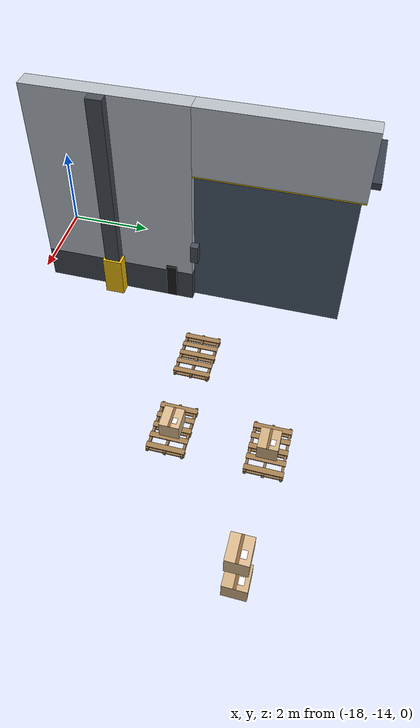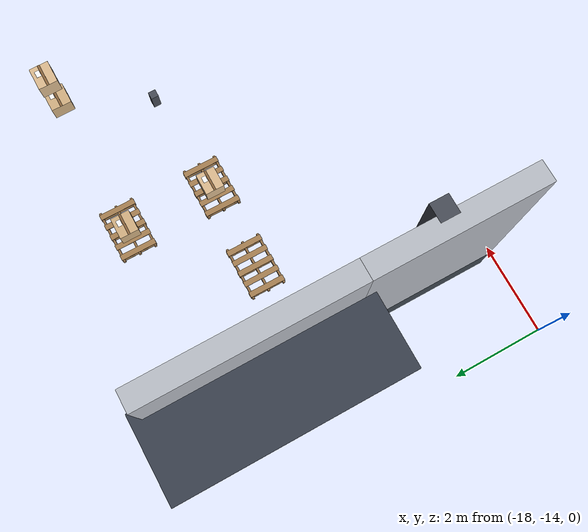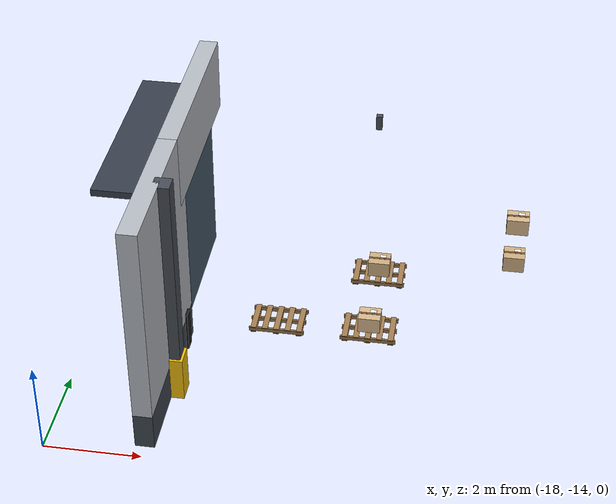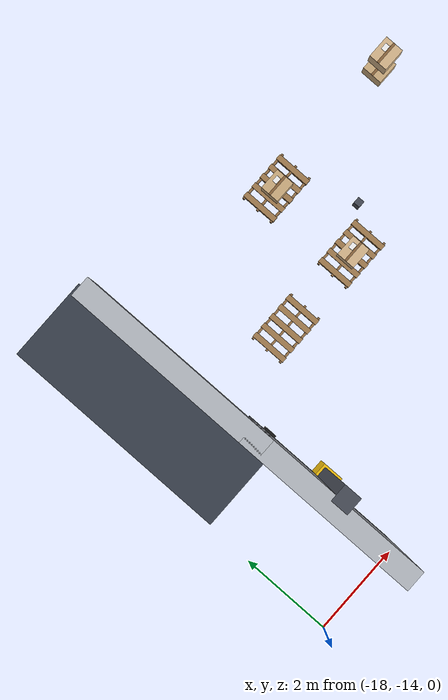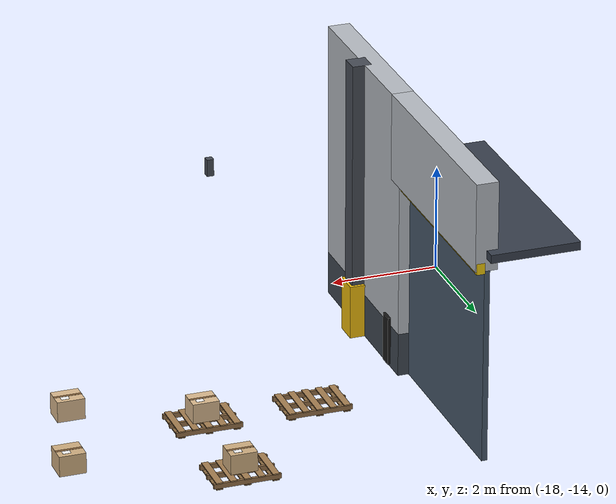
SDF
<sdf version="1.8">
 <world name="warehouse_3d">
  <model name="warehouse_architecture">
   <static>true</static>
   <link name="wall_west_s_base">
    <pose>-16.0000 -11.9000 0.4000 0.0000 0.0000 0.0000</pose>
    <collision name="wall_west_s_base_col">
     <geometry><box><size>0.4000 3.6000 0.8000</size></box></geometry>
    </collision>
    <visual name="wall_west_s_base_vis">
     <geometry><box><size>0.4000 3.6000 0.8000</size></box></geometry>
     <material>
      <ambient>0.163 0.182 0.208 1.00</ambient>
      <diffuse>0.250 0.280 0.320 1.00</diffuse>
      <specular>0.15 0.15 0.15 1.0</specular>
     </material>
    </visual>
   </link>
   <link name="wall_west_s_upper">
    <pose>-16.0000 -11.9000 3.0000 0.0000 0.0000 0.0000</pose>
    <collision name="wall_west_s_upper_col">
     <geometry><box><size>0.4000 3.6000 4.4000</size></box></geometry>
    </collision>
    <visual name="wall_west_s_upper_vis">
     <geometry><box><size>0.4000 3.6000 4.4000</size></box></geometry>
     <material>
      <ambient>0.468 0.481 0.501 1.00</ambient>
      <diffuse>0.720 0.740 0.770 1.00</diffuse>
      <specular>0.15 0.15 0.15 1.0</specular>
     </material>
    </visual>
   </link>
   <link name="dock_shutter_s_hdr">
    <pose>-16.0000 -8.5000 4.4000 0.0000 0.0000 0.0000</pose>
    <collision name="dock_shutter_s_hdr_col">
     <geometry><box><size>0.4000 4.0000 1.6000</size></box></geometry>
    </collision>
    <visual name="dock_shutter_s_hdr_vis">
     <geometry><box><size>0.4000 4.0000 1.6000</size></box></geometry>
     <material>
      <ambient>0.468 0.481 0.501 1.00</ambient>
      <diffuse>0.720 0.740 0.770 1.00</diffuse>
      <specular>0.15 0.15 0.15 1.0</specular>
     </material>
    </visual>
   </link>
   <link name="rollup_door_outbound">
    <pose>-16.0500 -8.5000 1.8000 0.0000 0.0000 0.0000</pose>
    <collision name="rollup_door_outbound_col">
     <geometry><box><size>0.1000 3.8000 3.6000</size></box></geometry>
    </collision>
    <visual name="rollup_door_outbound_vis">
     <geometry><box><size>0.1000 3.8000 3.6000</size></box></geometry>
     <material>
      <ambient>0.182 0.227 0.273 1.00</ambient>
      <diffuse>0.280 0.350 0.420 1.00</diffuse>
      <specular>0.15 0.15 0.15 1.0</specular>
     </material>
    </visual>
   </link>
   <link name="rollup_hazard_hdr_out">
    <pose>-15.9000 -8.5000 3.6500 0.0000 0.0000 0.0000</pose>
    <collision name="rollup_hazard_hdr_out_col">
     <geometry><box><size>0.1500 4.0000 0.2000</size></box></geometry>
    </collision>
    <visual name="rollup_hazard_hdr_out_vis">
     <geometry><box><size>0.1500 4.0000 0.2000</size></box></geometry>
     <material>
      <ambient>0.617 0.520 0.033 1.00</ambient>
      <diffuse>0.950 0.800 0.050 1.00</diffuse>
      <specular>0.15 0.15 0.15 1.0</specular>
     </material>
    </visual>
   </link>
   <link name="dock_canopy_out">
    <pose>-16.8000 -8.5000 3.9000 0.0000 0.0000 0.0000</pose>
    <collision name="dock_canopy_out_col">
     <geometry><box><size>1.6000 4.4000 0.1500</size></box></geometry>
    </collision>
    <visual name="dock_canopy_out_vis">
     <geometry><box><size>1.6000 4.4000 0.1500</size></box></geometry>
     <material>
      <ambient>0.143 0.163 0.195 1.00</ambient>
      <diffuse>0.220 0.250 0.300 1.00</diffuse>
      <specular>0.15 0.15 0.15 1.0</specular>
     </material>
    </visual>
   </link>
   <link name="dock_bumper_out_1">
    <pose>-15.8500 -10.6000 0.5000 0.0000 0.0000 0.0000</pose>
    <collision name="dock_bumper_out_1_col">
     <geometry><box><size>0.2000 0.2500 0.9000</size></box></geometry>
    </collision>
    <visual name="dock_bumper_out_1_vis">
     <geometry><box><size>0.2000 0.2500 0.9000</size></box></geometry>
     <material>
      <ambient>0.065 0.065 0.065 1.00</ambient>
      <diffuse>0.100 0.100 0.100 1.00</diffuse>
      <specular>0.15 0.15 0.15 1.0</specular>
     </material>
    </visual>
   </link>
   <link name="col_0_base">
    <pose>-15.7500 -12.0000 0.5000 0.0000 0.0000 0.0000</pose>
    <collision name="col_0_base_col"><geometry><box><size>0.4500 0.4500 1.0000</size></box></geometry></collision>
    <visual name="col_0_base_vis">
     <geometry><box><size>0.4500 0.4500 1.0000</size></box></geometry>
     <material>
      <ambient>0.617 0.488 0.033 1.00</ambient>
      <diffuse>0.950 0.750 0.050 1.00</diffuse>
      <specular>0.15 0.15 0.15 1.0</specular>
     </material>
    </visual>
   </link>
   <link name="col_0_stem">
    <pose>-15.7500 -12.0000 3.1000 0.0000 0.0000 0.0000</pose>
    <collision name="col_0_stem_col"><geometry><box><size>0.3500 0.3500 4.2000</size></box></geometry></collision>
    <visual name="col_0_stem_vis">
     <geometry><box><size>0.3500 0.3500 4.2000</size></box></geometry>
     <material>
      <ambient>0.182 0.195 0.221 1.00</ambient>
      <diffuse>0.280 0.300 0.340 1.00</diffuse>
      <specular>0.15 0.15 0.15 1.0</specular>
     </material>
    </visual>
   </link>
   <link name="truss_web_0_0">
    <pose>-12.0000 -9.0000 5.0500 0.0000 0.0000 0.0000</pose>
    <visual name="truss_web_0_0_vis">
     <geometry><box><size>0.1200 0.1200 0.3000</size></box></geometry>
     <material>
      <ambient>0.182 0.195 0.221 1.00</ambient>
      <diffuse>0.280 0.300 0.340 1.00</diffuse>
      <specular>0.15 0.15 0.15 1.0</specular>
     </material>
    </visual>
   </link>
  </model>
  <model name="pallet_pack_1">
   <static>true</static>
   <pose>-12.00 -9.50 0.00 0 0 0</pose>
   <link name="stringer_0">
    <pose>0.0000 -0.3600 0.0650 0.0000 0.0000 0.0000</pose>
    <collision name="stringer_0_col"><geometry><box><size>1.2000 0.0500 0.0900</size></box></geometry></collision>
    <visual name="stringer_0_vis">
     <geometry><box><size>1.2000 0.0500 0.0900</size></box></geometry>
     <material>
      <ambient>0.377 0.286 0.182 1.00</ambient>
      <diffuse>0.580 0.440 0.280 1.00</diffuse>
      <specular>0.15 0.15 0.15 1.0</specular>
     </material>
    </visual>
   </link>
   <link name="stringer_1">
    <pose>0.0000 0.0000 0.0650 0.0000 0.0000 0.0000</pose>
    <collision name="stringer_1_col"><geometry><box><size>1.2000 0.0500 0.0900</size></box></geometry></collision>
    <visual name="stringer_1_vis">
     <geometry><box><size>1.2000 0.0500 0.0900</size></box></geometry>
     <material>
      <ambient>0.377 0.286 0.182 1.00</ambient>
      <diffuse>0.580 0.440 0.280 1.00</diffuse>
      <specular>0.15 0.15 0.15 1.0</specular>
     </material>
    </visual>
   </link>
   <link name="stringer_2">
    <pose>0.0000 0.3600 0.0650 0.0000 0.0000 0.0000</pose>
    <collision name="stringer_2_col"><geometry><box><size>1.2000 0.0500 0.0900</size></box></geometry></collision>
    <visual name="stringer_2_vis">
     <geometry><box><size>1.2000 0.0500 0.0900</size></box></geometry>
     <material>
      <ambient>0.377 0.286 0.182 1.00</ambient>
      <diffuse>0.580 0.440 0.280 1.00</diffuse>
      <specular>0.15 0.15 0.15 1.0</specular>
     </material>
    </visual>
   </link>
   <link name="top_slat_0">
    <pose>-0.5000 0.0000 0.1200 0.0000 0.0000 0.0000</pose>
    <collision name="top_slat_0_col"><geometry><box><size>0.1200 0.8000 0.0220</size></box></geometry></collision>
    <visual name="top_slat_0_vis">
     <geometry><box><size>0.1200 0.8000 0.0220</size></box></geometry>
     <material>
      <ambient>0.423 0.325 0.208 1.00</ambient>
      <diffuse>0.650 0.500 0.320 1.00</diffuse>
      <specular>0.15 0.15 0.15 1.0</specular>
     </material>
    </visual>
   </link>
   <link name="top_slat_1">
    <pose>-0.2500 0.0000 0.1200 0.0000 0.0000 0.0000</pose>
    <collision name="top_slat_1_col"><geometry><box><size>0.1200 0.8000 0.0220</size></box></geometry></collision>
    <visual name="top_slat_1_vis">
     <geometry><box><size>0.1200 0.8000 0.0220</size></box></geometry>
     <material>
      <ambient>0.423 0.325 0.208 1.00</ambient>
      <diffuse>0.650 0.500 0.320 1.00</diffuse>
      <specular>0.15 0.15 0.15 1.0</specular>
     </material>
    </visual>
   </link>
   <link name="top_slat_2">
    <pose>0.0000 0.0000 0.1200 0.0000 0.0000 0.0000</pose>
    <collision name="top_slat_2_col"><geometry><box><size>0.1200 0.8000 0.0220</size></box></geometry></collision>
    <visual name="top_slat_2_vis">
     <geometry><box><size>0.1200 0.8000 0.0220</size></box></geometry>
     <material>
      <ambient>0.423 0.325 0.208 1.00</ambient>
      <diffuse>0.650 0.500 0.320 1.00</diffuse>
      <specular>0.15 0.15 0.15 1.0</specular>
     </material>
    </visual>
   </link>
   <link name="top_slat_3">
    <pose>0.2500 0.0000 0.1200 0.0000 0.0000 0.0000</pose>
    <collision name="top_slat_3_col"><geometry><box><size>0.1200 0.8000 0.0220</size></box></geometry></collision>
    <visual name="top_slat_3_vis">
     <geometry><box><size>0.1200 0.8000 0.0220</size></box></geometry>
     <material>
      <ambient>0.423 0.325 0.208 1.00</ambient>
      <diffuse>0.650 0.500 0.320 1.00</diffuse>
      <specular>0.15 0.15 0.15 1.0</specular>
     </material>
    </visual>
   </link>
   <link name="top_slat_4">
    <pose>0.5000 0.0000 0.1200 0.0000 0.0000 0.0000</pose>
    <collision name="top_slat_4_col"><geometry><box><size>0.1200 0.8000 0.0220</size></box></geometry></collision>
    <visual name="top_slat_4_vis">
     <geometry><box><size>0.1200 0.8000 0.0220</size></box></geometry>
     <material>
      <ambient>0.423 0.325 0.208 1.00</ambient>
      <diffuse>0.650 0.500 0.320 1.00</diffuse>
      <specular>0.15 0.15 0.15 1.0</specular>
     </material>
    </visual>
   </link>
   <link name="bot_slat_0">
    <pose>-0.5000 0.0000 0.0100 0.0000 0.0000 0.0000</pose>
    <collision name="bot_slat_0_col"><geometry><box><size>0.1200 0.8000 0.0200</size></box></geometry></collision>
    <visual name="bot_slat_0_vis">
     <geometry><box><size>0.1200 0.8000 0.0200</size></box></geometry>
     <material>
      <ambient>0.358 0.273 0.169 1.00</ambient>
      <diffuse>0.550 0.420 0.260 1.00</diffuse>
      <specular>0.15 0.15 0.15 1.0</specular>
     </material>
    </visual>
   </link>
   <link name="bot_slat_1">
    <pose>0.0000 0.0000 0.0100 0.0000 0.0000 0.0000</pose>
    <collision name="bot_slat_1_col"><geometry><box><size>0.1200 0.8000 0.0200</size></box></geometry></collision>
    <visual name="bot_slat_1_vis">
     <geometry><box><size>0.1200 0.8000 0.0200</size></box></geometry>
     <material>
      <ambient>0.358 0.273 0.169 1.00</ambient>
      <diffuse>0.550 0.420 0.260 1.00</diffuse>
      <specular>0.15 0.15 0.15 1.0</specular>
     </material>
    </visual>
   </link>
   <link name="bot_slat_2">
    <pose>0.5000 0.0000 0.0100 0.0000 0.0000 0.0000</pose>
    <collision name="bot_slat_2_col"><geometry><box><size>0.1200 0.8000 0.0200</size></box></geometry></collision>
    <visual name="bot_slat_2_vis">
     <geometry><box><size>0.1200 0.8000 0.0200</size></box></geometry>
     <material>
      <ambient>0.358 0.273 0.169 1.00</ambient>
      <diffuse>0.550 0.420 0.260 1.00</diffuse>
      <specular>0.15 0.15 0.15 1.0</specular>
     </material>
    </visual>
   </link>
  </model>
  <model name="pallet_pack_2">
   <static>true</static>
   <pose>-12.00 -7.50 0.00 0 0 0</pose>
   <link name="stringer_0">
    <pose>0.0000 -0.3600 0.0650 0.0000 0.0000 0.0000</pose>
    <collision name="stringer_0_col"><geometry><box><size>1.2000 0.0500 0.0900</size></box></geometry></collision>
    <visual name="stringer_0_vis">
     <geometry><box><size>1.2000 0.0500 0.0900</size></box></geometry>
     <material>
      <ambient>0.377 0.286 0.182 1.00</ambient>
      <diffuse>0.580 0.440 0.280 1.00</diffuse>
      <specular>0.15 0.15 0.15 1.0</specular>
     </material>
    </visual>
   </link>
   <link name="stringer_1">
    <pose>0.0000 0.0000 0.0650 0.0000 0.0000 0.0000</pose>
    <collision name="stringer_1_col"><geometry><box><size>1.2000 0.0500 0.0900</size></box></geometry></collision>
    <visual name="stringer_1_vis">
     <geometry><box><size>1.2000 0.0500 0.0900</size></box></geometry>
     <material>
      <ambient>0.377 0.286 0.182 1.00</ambient>
      <diffuse>0.580 0.440 0.280 1.00</diffuse>
      <specular>0.15 0.15 0.15 1.0</specular>
     </material>
    </visual>
   </link>
   <link name="stringer_2">
    <pose>0.0000 0.3600 0.0650 0.0000 0.0000 0.0000</pose>
    <collision name="stringer_2_col"><geometry><box><size>1.2000 0.0500 0.0900</size></box></geometry></collision>
    <visual name="stringer_2_vis">
     <geometry><box><size>1.2000 0.0500 0.0900</size></box></geometry>
     <material>
      <ambient>0.377 0.286 0.182 1.00</ambient>
      <diffuse>0.580 0.440 0.280 1.00</diffuse>
      <specular>0.15 0.15 0.15 1.0</specular>
     </material>
    </visual>
   </link>
   <link name="top_slat_0">
    <pose>-0.5000 0.0000 0.1200 0.0000 0.0000 0.0000</pose>
    <collision name="top_slat_0_col"><geometry><box><size>0.1200 0.8000 0.0220</size></box></geometry></collision>
    <visual name="top_slat_0_vis">
     <geometry><box><size>0.1200 0.8000 0.0220</size></box></geometry>
     <material>
      <ambient>0.423 0.325 0.208 1.00</ambient>
      <diffuse>0.650 0.500 0.320 1.00</diffuse>
      <specular>0.15 0.15 0.15 1.0</specular>
     </material>
    </visual>
   </link>
   <link name="top_slat_1">
    <pose>-0.2500 0.0000 0.1200 0.0000 0.0000 0.0000</pose>
    <collision name="top_slat_1_col"><geometry><box><size>0.1200 0.8000 0.0220</size></box></geometry></collision>
    <visual name="top_slat_1_vis">
     <geometry><box><size>0.1200 0.8000 0.0220</size></box></geometry>
     <material>
      <ambient>0.423 0.325 0.208 1.00</ambient>
      <diffuse>0.650 0.500 0.320 1.00</diffuse>
      <specular>0.15 0.15 0.15 1.0</specular>
     </material>
    </visual>
   </link>
   <link name="top_slat_2">
    <pose>0.0000 0.0000 0.1200 0.0000 0.0000 0.0000</pose>
    <collision name="top_slat_2_col"><geometry><box><size>0.1200 0.8000 0.0220</size></box></geometry></collision>
    <visual name="top_slat_2_vis">
     <geometry><box><size>0.1200 0.8000 0.0220</size></box></geometry>
     <material>
      <ambient>0.423 0.325 0.208 1.00</ambient>
      <diffuse>0.650 0.500 0.320 1.00</diffuse>
      <specular>0.15 0.15 0.15 1.0</specular>
     </material>
    </visual>
   </link>
   <link name="top_slat_3">
    <pose>0.2500 0.0000 0.1200 0.0000 0.0000 0.0000</pose>
    <collision name="top_slat_3_col"><geometry><box><size>0.1200 0.8000 0.0220</size></box></geometry></collision>
    <visual name="top_slat_3_vis">
     <geometry><box><size>0.1200 0.8000 0.0220</size></box></geometry>
     <material>
      <ambient>0.423 0.325 0.208 1.00</ambient>
      <diffuse>0.650 0.500 0.320 1.00</diffuse>
      <specular>0.15 0.15 0.15 1.0</specular>
     </material>
    </visual>
   </link>
   <link name="top_slat_4">
    <pose>0.5000 0.0000 0.1200 0.0000 0.0000 0.0000</pose>
    <collision name="top_slat_4_col"><geometry><box><size>0.1200 0.8000 0.0220</size></box></geometry></collision>
    <visual name="top_slat_4_vis">
     <geometry><box><size>0.1200 0.8000 0.0220</size></box></geometry>
     <material>
      <ambient>0.423 0.325 0.208 1.00</ambient>
      <diffuse>0.650 0.500 0.320 1.00</diffuse>
      <specular>0.15 0.15 0.15 1.0</specular>
     </material>
    </visual>
   </link>
   <link name="bot_slat_0">
    <pose>-0.5000 0.0000 0.0100 0.0000 0.0000 0.0000</pose>
    <collision name="bot_slat_0_col"><geometry><box><size>0.1200 0.8000 0.0200</size></box></geometry></collision>
    <visual name="bot_slat_0_vis">
     <geometry><box><size>0.1200 0.8000 0.0200</size></box></geometry>
     <material>
      <ambient>0.358 0.273 0.169 1.00</ambient>
      <diffuse>0.550 0.420 0.260 1.00</diffuse>
      <specular>0.15 0.15 0.15 1.0</specular>
     </material>
    </visual>
   </link>
   <link name="bot_slat_1">
    <pose>0.0000 0.0000 0.0100 0.0000 0.0000 0.0000</pose>
    <collision name="bot_slat_1_col"><geometry><box><size>0.1200 0.8000 0.0200</size></box></geometry></collision>
    <visual name="bot_slat_1_vis">
     <geometry><box><size>0.1200 0.8000 0.0200</size></box></geometry>
     <material>
      <ambient>0.358 0.273 0.169 1.00</ambient>
      <diffuse>0.550 0.420 0.260 1.00</diffuse>
      <specular>0.15 0.15 0.15 1.0</specular>
     </material>
    </visual>
   </link>
   <link name="bot_slat_2">
    <pose>0.5000 0.0000 0.0100 0.0000 0.0000 0.0000</pose>
    <collision name="bot_slat_2_col"><geometry><box><size>0.1200 0.8000 0.0200</size></box></geometry></collision>
    <visual name="bot_slat_2_vis">
     <geometry><box><size>0.1200 0.8000 0.0200</size></box></geometry>
     <material>
      <ambient>0.358 0.273 0.169 1.00</ambient>
      <diffuse>0.550 0.420 0.260 1.00</diffuse>
      <specular>0.15 0.15 0.15 1.0</specular>
     </material>
    </visual>
   </link>
  </model>
  <model name="pallet_stage_pack">
   <static>true</static>
   <pose>-14.00 -9.50 0.00 0 0 0</pose>
   <link name="stringer_0">
    <pose>0.0000 -0.3600 0.0650 0.0000 0.0000 0.0000</pose>
    <collision name="stringer_0_col"><geometry><box><size>1.2000 0.0500 0.0900</size></box></geometry></collision>
    <visual name="stringer_0_vis">
     <geometry><box><size>1.2000 0.0500 0.0900</size></box></geometry>
     <material>
      <ambient>0.377 0.286 0.182 1.00</ambient>
      <diffuse>0.580 0.440 0.280 1.00</diffuse>
      <specular>0.15 0.15 0.15 1.0</specular>
     </material>
    </visual>
   </link>
   <link name="stringer_1">
    <pose>0.0000 0.0000 0.0650 0.0000 0.0000 0.0000</pose>
    <collision name="stringer_1_col"><geometry><box><size>1.2000 0.0500 0.0900</size></box></geometry></collision>
    <visual name="stringer_1_vis">
     <geometry><box><size>1.2000 0.0500 0.0900</size></box></geometry>
     <material>
      <ambient>0.377 0.286 0.182 1.00</ambient>
      <diffuse>0.580 0.440 0.280 1.00</diffuse>
      <specular>0.15 0.15 0.15 1.0</specular>
     </material>
    </visual>
   </link>
   <link name="stringer_2">
    <pose>0.0000 0.3600 0.0650 0.0000 0.0000 0.0000</pose>
    <collision name="stringer_2_col"><geometry><box><size>1.2000 0.0500 0.0900</size></box></geometry></collision>
    <visual name="stringer_2_vis">
     <geometry><box><size>1.2000 0.0500 0.0900</size></box></geometry>
     <material>
      <ambient>0.377 0.286 0.182 1.00</ambient>
      <diffuse>0.580 0.440 0.280 1.00</diffuse>
      <specular>0.15 0.15 0.15 1.0</specular>
     </material>
    </visual>
   </link>
   <link name="top_slat_0">
    <pose>-0.5000 0.0000 0.1200 0.0000 0.0000 0.0000</pose>
    <collision name="top_slat_0_col"><geometry><box><size>0.1200 0.8000 0.0220</size></box></geometry></collision>
    <visual name="top_slat_0_vis">
     <geometry><box><size>0.1200 0.8000 0.0220</size></box></geometry>
     <material>
      <ambient>0.423 0.325 0.208 1.00</ambient>
      <diffuse>0.650 0.500 0.320 1.00</diffuse>
      <specular>0.15 0.15 0.15 1.0</specular>
     </material>
    </visual>
   </link>
   <link name="top_slat_1">
    <pose>-0.2500 0.0000 0.1200 0.0000 0.0000 0.0000</pose>
    <collision name="top_slat_1_col"><geometry><box><size>0.1200 0.8000 0.0220</size></box></geometry></collision>
    <visual name="top_slat_1_vis">
     <geometry><box><size>0.1200 0.8000 0.0220</size></box></geometry>
     <material>
      <ambient>0.423 0.325 0.208 1.00</ambient>
      <diffuse>0.650 0.500 0.320 1.00</diffuse>
      <specular>0.15 0.15 0.15 1.0</specular>
     </material>
    </visual>
   </link>
   <link name="top_slat_2">
    <pose>0.0000 0.0000 0.1200 0.0000 0.0000 0.0000</pose>
    <collision name="top_slat_2_col"><geometry><box><size>0.1200 0.8000 0.0220</size></box></geometry></collision>
    <visual name="top_slat_2_vis">
     <geometry><box><size>0.1200 0.8000 0.0220</size></box></geometry>
     <material>
      <ambient>0.423 0.325 0.208 1.00</ambient>
      <diffuse>0.650 0.500 0.320 1.00</diffuse>
      <specular>0.15 0.15 0.15 1.0</specular>
     </material>
    </visual>
   </link>
   <link name="top_slat_3">
    <pose>0.2500 0.0000 0.1200 0.0000 0.0000 0.0000</pose>
    <collision name="top_slat_3_col"><geometry><box><size>0.1200 0.8000 0.0220</size></box></geometry></collision>
    <visual name="top_slat_3_vis">
     <geometry><box><size>0.1200 0.8000 0.0220</size></box></geometry>
     <material>
      <ambient>0.423 0.325 0.208 1.00</ambient>
      <diffuse>0.650 0.500 0.320 1.00</diffuse>
      <specular>0.15 0.15 0.15 1.0</specular>
     </material>
    </visual>
   </link>
   <link name="top_slat_4">
    <pose>0.5000 0.0000 0.1200 0.0000 0.0000 0.0000</pose>
    <collision name="top_slat_4_col"><geometry><box><size>0.1200 0.8000 0.0220</size></box></geometry></collision>
    <visual name="top_slat_4_vis">
     <geometry><box><size>0.1200 0.8000 0.0220</size></box></geometry>
     <material>
      <ambient>0.423 0.325 0.208 1.00</ambient>
      <diffuse>0.650 0.500 0.320 1.00</diffuse>
      <specular>0.15 0.15 0.15 1.0</specular>
     </material>
    </visual>
   </link>
   <link name="bot_slat_0">
    <pose>-0.5000 0.0000 0.0100 0.0000 0.0000 0.0000</pose>
    <collision name="bot_slat_0_col"><geometry><box><size>0.1200 0.8000 0.0200</size></box></geometry></collision>
    <visual name="bot_slat_0_vis">
     <geometry><box><size>0.1200 0.8000 0.0200</size></box></geometry>
     <material>
      <ambient>0.358 0.273 0.169 1.00</ambient>
      <diffuse>0.550 0.420 0.260 1.00</diffuse>
      <specular>0.15 0.15 0.15 1.0</specular>
     </material>
    </visual>
   </link>
   <link name="bot_slat_1">
    <pose>0.0000 0.0000 0.0100 0.0000 0.0000 0.0000</pose>
    <collision name="bot_slat_1_col"><geometry><box><size>0.1200 0.8000 0.0200</size></box></geometry></collision>
    <visual name="bot_slat_1_vis">
     <geometry><box><size>0.1200 0.8000 0.0200</size></box></geometry>
     <material>
      <ambient>0.358 0.273 0.169 1.00</ambient>
      <diffuse>0.550 0.420 0.260 1.00</diffuse>
      <specular>0.15 0.15 0.15 1.0</specular>
     </material>
    </visual>
   </link>
   <link name="bot_slat_2">
    <pose>0.5000 0.0000 0.0100 0.0000 0.0000 0.0000</pose>
    <collision name="bot_slat_2_col"><geometry><box><size>0.1200 0.8000 0.0200</size></box></geometry></collision>
    <visual name="bot_slat_2_vis">
     <geometry><box><size>0.1200 0.8000 0.0200</size></box></geometry>
     <material>
      <ambient>0.358 0.273 0.169 1.00</ambient>
      <diffuse>0.550 0.420 0.260 1.00</diffuse>
      <specular>0.15 0.15 0.15 1.0</specular>
     </material>
    </visual>
   </link>
  </model>
  <model name="package_P001">
   <static>true</static>
   <pose>-9.00 -7.50 0.82 0 0 0</pose>
   <link name="box_link">
    <collision name="box_col"><geometry><box><size>0.47 0.44 0.37</size></box></geometry></collision>
    <visual name="box_vis">
     <geometry><box><size>0.47 0.44 0.37</size></box></geometry>
     <material>
      <ambient>0.57 0.48 0.36 1.0</ambient>
      <diffuse>0.82 0.69 0.51 1.0</diffuse>
      <specular>0.08 0.08 0.08 1.0</specular>
     </material>
    </visual>
    <visual name="top_tape">
     <pose>0 0 0.1860 0 0 0</pose>
     <geometry><box><size>0.472 0.05 0.002</size></box></geometry>
     <material><ambient>0.48 0.35 0.20 1.0</ambient><diffuse>0.55 0.40 0.24 1.0</diffuse></material>
    </visual>
    <visual name="shipping_label">
     <pose>0.070 0.088 0.1870 0 0 0</pose>
     <geometry><box><size>0.14 0.10 0.002</size></box></geometry>
     <material><ambient>0.92 0.92 0.92 1.0</ambient><diffuse>0.98 0.98 0.98 1.0</diffuse></material>
    </visual>
   </link>
  </model>
  <model name="package_P006">
   <static>true</static>
   <pose>-9.00 -7.50 1.82 0 0 0</pose>
   <link name="box_link">
    <collision name="box_col"><geometry><box><size>0.48 0.40 0.37</size></box></geometry></collision>
    <visual name="box_vis">
     <geometry><box><size>0.48 0.40 0.37</size></box></geometry>
     <material>
      <ambient>0.60 0.51 0.39 1.0</ambient>
      <diffuse>0.86 0.73 0.56 1.0</diffuse>
      <specular>0.08 0.08 0.08 1.0</specular>
     </material>
    </visual>
    <visual name="top_tape">
     <pose>0 0 0.1860 0 0 0</pose>
     <geometry><box><size>0.482 0.05 0.002</size></box></geometry>
     <material><ambient>0.48 0.35 0.20 1.0</ambient><diffuse>0.55 0.40 0.24 1.0</diffuse></material>
    </visual>
    <visual name="shipping_label">
     <pose>0.072 0.080 0.1870 0 0 0</pose>
     <geometry><box><size>0.14 0.10 0.002</size></box></geometry>
     <material><ambient>0.92 0.92 0.92 1.0</ambient><diffuse>0.98 0.98 0.98 1.0</diffuse></material>
    </visual>
   </link>
  </model>
  <model name="package_P093">
   <static>true</static>
   <pose>-12.00 -9.50 0.32 0 0 0</pose>
   <link name="box_link">
    <collision name="box_col"><geometry><box><size>0.48 0.42 0.36</size></box></geometry></collision>
    <visual name="box_vis">
     <geometry><box><size>0.48 0.42 0.36</size></box></geometry>
     <material>
      <ambient>0.60 0.51 0.39 1.0</ambient>
      <diffuse>0.86 0.73 0.56 1.0</diffuse>
      <specular>0.08 0.08 0.08 1.0</specular>
     </material>
    </visual>
    <visual name="top_tape">
     <pose>0 0 0.1810 0 0 0</pose>
     <geometry><box><size>0.482 0.05 0.002</size></box></geometry>
     <material><ambient>0.48 0.35 0.20 1.0</ambient><diffuse>0.55 0.40 0.24 1.0</diffuse></material>
    </visual>
    <visual name="shipping_label">
     <pose>0.072 0.084 0.1820 0 0 0</pose>
     <geometry><box><size>0.14 0.10 0.002</size></box></geometry>
     <material><ambient>0.92 0.92 0.92 1.0</ambient><diffuse>0.98 0.98 0.98 1.0</diffuse></material>
    </visual>
   </link>
  </model>
  <model name="package_P094">
   <static>true</static>
   <pose>-12.00 -7.50 0.32 0 0 0</pose>
   <link name="box_link">
    <collision name="box_col"><geometry><box><size>0.48 0.42 0.36</size></box></geometry></collision>
    <visual name="box_vis">
     <geometry><box><size>0.48 0.42 0.36</size></box></geometry>
     <material>
      <ambient>0.57 0.48 0.36 1.0</ambient>
      <diffuse>0.82 0.69 0.51 1.0</diffuse>
      <specular>0.08 0.08 0.08 1.0</specular>
     </material>
    </visual>
    <visual name="top_tape">
     <pose>0 0 0.1810 0 0 0</pose>
     <geometry><box><size>0.482 0.05 0.002</size></box></geometry>
     <material><ambient>0.48 0.35 0.20 1.0</ambient><diffuse>0.55 0.40 0.24 1.0</diffuse></material>
    </visual>
    <visual name="shipping_label">
     <pose>0.072 0.084 0.1820 0 0 0</pose>
     <geometry><box><size>0.14 0.10 0.002</size></box></geometry>
     <material><ambient>0.92 0.92 0.92 1.0</ambient><diffuse>0.98 0.98 0.98 1.0</diffuse></material>
    </visual>
   </link>
  </model>
 </world>
</sdf>
